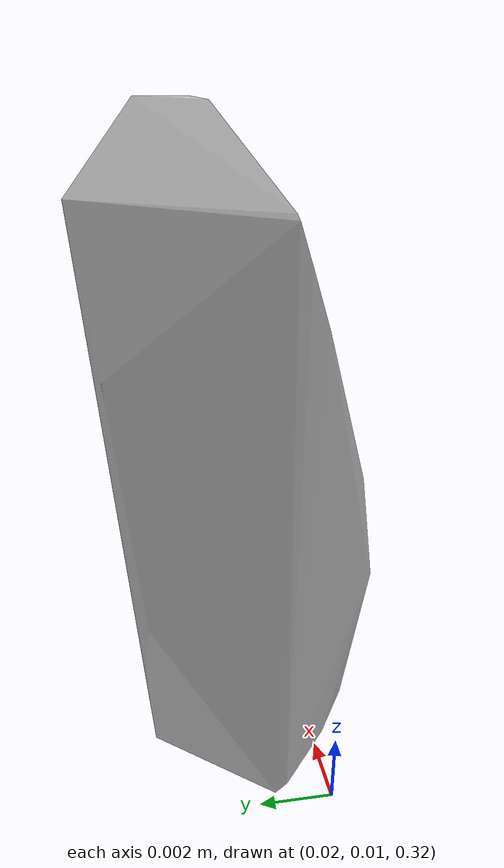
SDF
<?xml version="1.0"?>
<sdf version="1.7">
  <model name="vascular_partexport033">
    <link name="vascular_partexport033_body">
      <visual name="vascular_partexport033_visual">
        <geometry>
          <mesh>
            <uri>vascular_partexport033.obj</uri>
          </mesh>
        </geometry>
      </visual>
      <collision name="vascular_partexport033_collision">
        <geometry>
          <mesh>
            <uri>vascular_partexport033.obj</uri>
          </mesh>
        </geometry>
      </collision>
    </link>
    <frame name="vascular_partexport033_center">
      <pose relative_to="vascular_partexport033_body">0 0 0 0 0 0</pose>
    </frame>
  </model>
</sdf>
